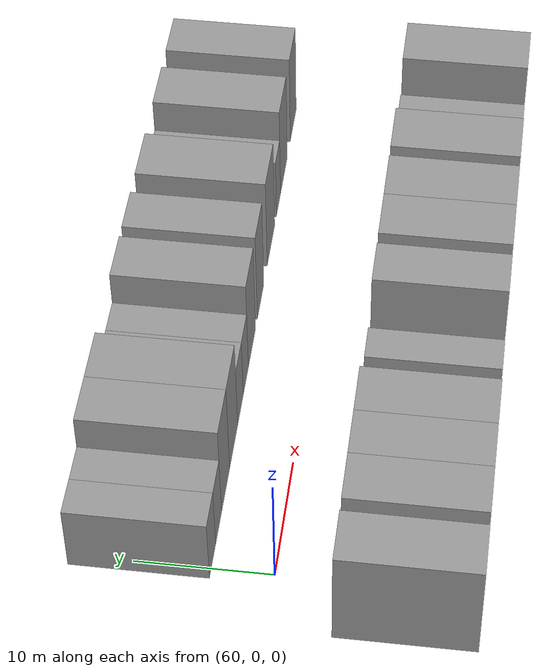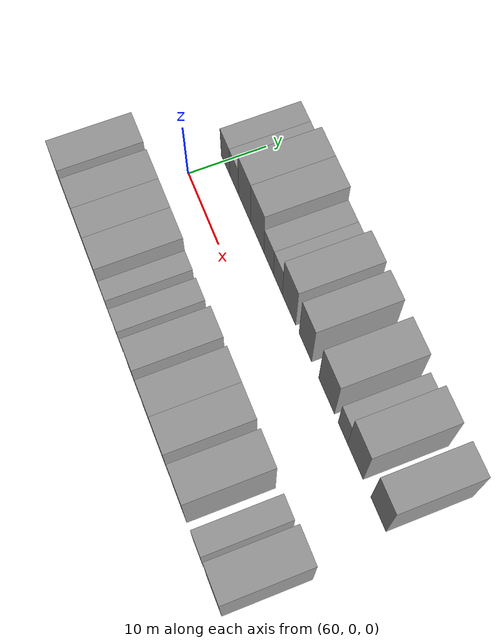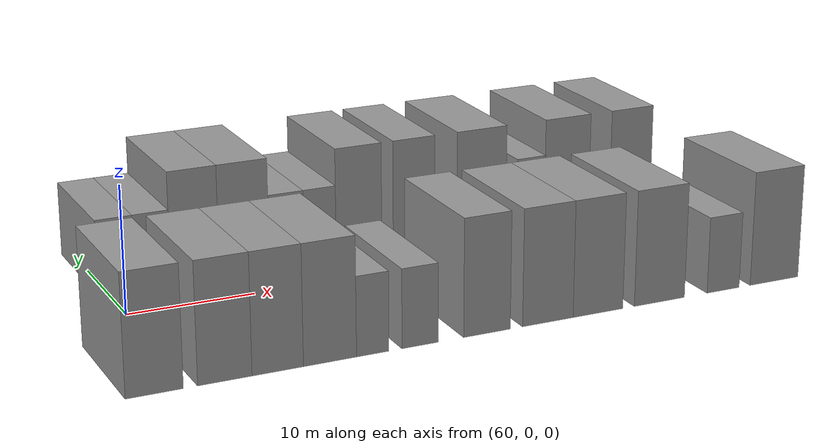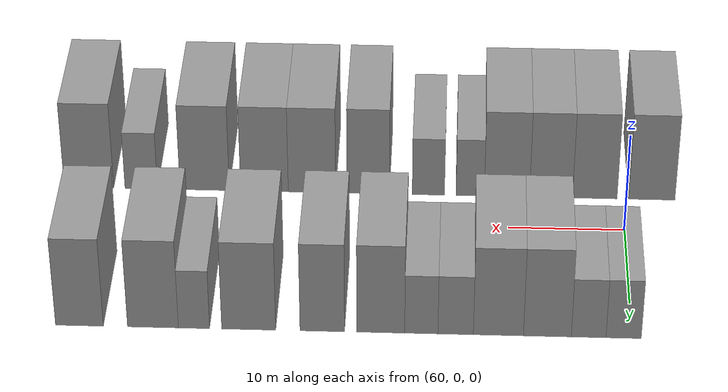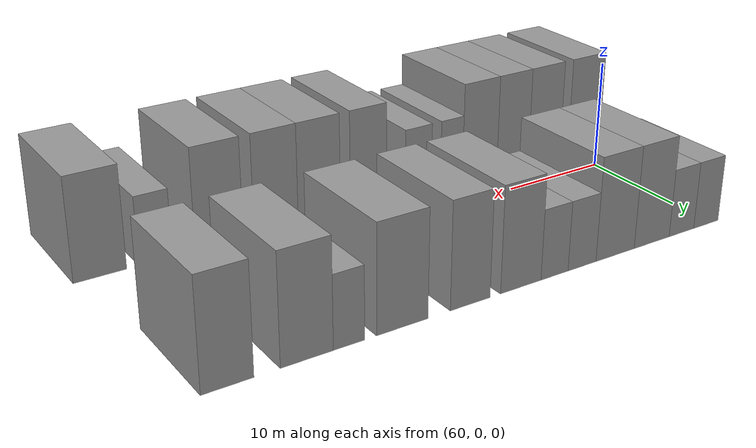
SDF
<sdf version="1.6">
 <world name="default">
  <model name="building_12">
   <static>1</static>
   <pose>60.6485 9.5000 0 0.000000 0.000000 1.570796</pose>
   <link name="link">
    <pose>0 0 3.00 0 0 0</pose>
    <collision name="collision"><geometry><box><size>10.0000 2.8870 6.0000</size></box></geometry></collision>
    <visual name="visual">
     <cast_shadows>0</cast_shadows>
     <geometry><box><size>10.0000 2.8870 6.0000</size></box></geometry>
     <material>
      <script>
       <uri>model://grey_wall/materials/scripts</uri>
       <uri>model://grey_wall/materials/textures</uri>
       <name>vrc/grey_wall</name>
      </script>
     </material>
    </visual>
   </link>
  </model>
  <model name="building_13">
   <static>1</static>
   <pose>63.5097 9.5000 0 0.000000 0.000000 1.570796</pose>
   <link name="link">
    <pose>0 0 3.00 0 0 0</pose>
    <collision name="collision"><geometry><box><size>10.0000 2.8355 6.0000</size></box></geometry></collision>
    <visual name="visual">
     <cast_shadows>0</cast_shadows>
     <geometry><box><size>10.0000 2.8355 6.0000</size></box></geometry>
     <material>
      <script>
       <uri>model://grey_wall/materials/scripts</uri>
       <uri>model://grey_wall/materials/textures</uri>
       <name>vrc/grey_wall</name>
      </script>
     </material>
    </visual>
   </link>
  </model>
  <model name="building_14">
   <static>1</static>
   <pose>66.8850 9.5000 0 0.000000 0.000000 1.570796</pose>
   <link name="link">
    <pose>0 0 4.50 0 0 0</pose>
    <collision name="collision"><geometry><box><size>10.0000 3.9152 9.0000</size></box></geometry></collision>
    <visual name="visual">
     <cast_shadows>0</cast_shadows>
     <geometry><box><size>10.0000 3.9152 9.0000</size></box></geometry>
     <material>
      <script>
       <uri>model://grey_wall/materials/scripts</uri>
       <uri>model://grey_wall/materials/textures</uri>
       <name>vrc/grey_wall</name>
      </script>
     </material>
    </visual>
   </link>
  </model>
  <model name="building_15">
   <static>1</static>
   <pose>70.8978 9.5000 0 0.000000 0.000000 1.570796</pose>
   <link name="link">
    <pose>0 0 4.50 0 0 0</pose>
    <collision name="collision"><geometry><box><size>10.0000 4.1103 9.0000</size></box></geometry></collision>
    <visual name="visual">
     <cast_shadows>0</cast_shadows>
     <geometry><box><size>10.0000 4.1103 9.0000</size></box></geometry>
     <material>
      <script>
       <uri>model://grey_wall/materials/scripts</uri>
       <uri>model://grey_wall/materials/textures</uri>
       <name>vrc/grey_wall</name>
      </script>
     </material>
    </visual>
   </link>
  </model>
  <model name="building_16">
   <static>1</static>
   <pose>74.4042 9.5000 0 0.000000 0.000000 1.570796</pose>
   <link name="link">
    <pose>0 0 3.00 0 0 0</pose>
    <collision name="collision"><geometry><box><size>10.0000 2.9024 6.0000</size></box></geometry></collision>
    <visual name="visual">
     <cast_shadows>0</cast_shadows>
     <geometry><box><size>10.0000 2.9024 6.0000</size></box></geometry>
     <material>
      <script>
       <uri>model://grey_wall/materials/scripts</uri>
       <uri>model://grey_wall/materials/textures</uri>
       <name>vrc/grey_wall</name>
      </script>
     </material>
    </visual>
   </link>
  </model>
  <model name="building_17">
   <static>1</static>
   <pose>77.2181 9.5000 0 0.000000 0.000000 1.570796</pose>
   <link name="link">
    <pose>0 0 3.00 0 0 0</pose>
    <collision name="collision"><geometry><box><size>10.0000 2.7256 6.0000</size></box></geometry></collision>
    <visual name="visual">
     <cast_shadows>0</cast_shadows>
     <geometry><box><size>10.0000 2.7256 6.0000</size></box></geometry>
     <material>
      <script>
       <uri>model://grey_wall/materials/scripts</uri>
       <uri>model://grey_wall/materials/textures</uri>
       <name>vrc/grey_wall</name>
      </script>
     </material>
    </visual>
   </link>
  </model>
  <model name="building_18">
   <static>1</static>
   <pose>80.5503 9.5000 0 0.000000 0.000000 1.570796</pose>
   <link name="link">
    <pose>0 0 4.50 0 0 0</pose>
    <collision name="collision"><geometry><box><size>10.0000 3.9388 9.0000</size></box></geometry></collision>
    <visual name="visual">
     <cast_shadows>0</cast_shadows>
     <geometry><box><size>10.0000 3.9388 9.0000</size></box></geometry>
     <material>
      <script>
       <uri>model://grey_wall/materials/scripts</uri>
       <uri>model://grey_wall/materials/textures</uri>
       <name>vrc/grey_wall</name>
      </script>
     </material>
    </visual>
   </link>
  </model>
  <model name="building_19">
   <static>1</static>
   <pose>85.3523 9.5000 0 0.000000 0.000000 1.570796</pose>
   <link name="link">
    <pose>0 0 4.50 0 0 0</pose>
    <collision name="collision"><geometry><box><size>10.0000 3.6652 9.0000</size></box></geometry></collision>
    <visual name="visual">
     <cast_shadows>0</cast_shadows>
     <geometry><box><size>10.0000 3.6652 9.0000</size></box></geometry>
     <material>
      <script>
       <uri>model://grey_wall/materials/scripts</uri>
       <uri>model://grey_wall/materials/textures</uri>
       <name>vrc/grey_wall</name>
      </script>
     </material>
    </visual>
   </link>
  </model>
  <model name="building_20">
   <static>1</static>
   <pose>91.4094 9.5000 0 0.000000 0.000000 1.570796</pose>
   <link name="link">
    <pose>0 0 4.50 0 0 0</pose>
    <collision name="collision"><geometry><box><size>10.0000 4.4489 9.0000</size></box></geometry></collision>
    <visual name="visual">
     <cast_shadows>0</cast_shadows>
     <geometry><box><size>10.0000 4.4489 9.0000</size></box></geometry>
     <material>
      <script>
       <uri>model://grey_wall/materials/scripts</uri>
       <uri>model://grey_wall/materials/textures</uri>
       <name>vrc/grey_wall</name>
      </script>
     </material>
    </visual>
   </link>
  </model>
  <model name="building_21">
   <static>1</static>
   <pose>95.9213 9.5000 0 0.000000 0.000000 1.570796</pose>
   <link name="link">
    <pose>0 0 3.00 0 0 0</pose>
    <collision name="collision"><geometry><box><size>10.0000 2.5750 6.0000</size></box></geometry></collision>
    <visual name="visual">
     <cast_shadows>0</cast_shadows>
     <geometry><box><size>10.0000 2.5750 6.0000</size></box></geometry>
     <material>
      <script>
       <uri>model://grey_wall/materials/scripts</uri>
       <uri>model://grey_wall/materials/textures</uri>
       <name>vrc/grey_wall</name>
      </script>
     </material>
    </visual>
   </link>
  </model>
  <model name="building_22">
   <static>1</static>
   <pose>99.3051 9.5000 0 0.000000 0.000000 1.570796</pose>
   <link name="link">
    <pose>0 0 4.50 0 0 0</pose>
    <collision name="collision"><geometry><box><size>10.0000 4.1926 9.0000</size></box></geometry></collision>
    <visual name="visual">
     <cast_shadows>0</cast_shadows>
     <geometry><box><size>10.0000 4.1926 9.0000</size></box></geometry>
     <material>
      <script>
       <uri>model://grey_wall/materials/scripts</uri>
       <uri>model://grey_wall/materials/textures</uri>
       <name>vrc/grey_wall</name>
      </script>
     </material>
    </visual>
   </link>
  </model>
  <model name="building_23">
   <static>1</static>
   <pose>105.3759 9.5000 0 0.000000 0.000000 1.570796</pose>
   <link name="link">
    <pose>0 0 4.50 0 0 0</pose>
    <collision name="collision"><geometry><box><size>10.0000 3.9490 9.0000</size></box></geometry></collision>
    <visual name="visual">
     <cast_shadows>0</cast_shadows>
     <geometry><box><size>10.0000 3.9490 9.0000</size></box></geometry>
     <material>
      <script>
       <uri>model://grey_wall/materials/scripts</uri>
       <uri>model://grey_wall/materials/textures</uri>
       <name>vrc/grey_wall</name>
      </script>
     </material>
    </visual>
   </link>
  </model>
  <model name="building_61">
   <static>1</static>
   <pose>57.4158 -9.5000 0 0.000000 0.000000 1.570796</pose>
   <link name="link">
    <pose>0 0 4.50 0 0 0</pose>
    <collision name="collision"><geometry><box><size>10.0000 4.0583 9.0000</size></box></geometry></collision>
    <visual name="visual">
     <cast_shadows>0</cast_shadows>
     <geometry><box><size>10.0000 4.0583 9.0000</size></box></geometry>
     <material>
      <script>
       <uri>model://grey_wall/materials/scripts</uri>
       <uri>model://grey_wall/materials/textures</uri>
       <name>vrc/grey_wall</name>
      </script>
     </material>
    </visual>
   </link>
  </model>
  <model name="building_62">
   <static>1</static>
   <pose>62.3943 -9.5000 0 0.000000 0.000000 1.570796</pose>
   <link name="link">
    <pose>0 0 4.50 0 0 0</pose>
    <collision name="collision"><geometry><box><size>10.0000 3.8988 9.0000</size></box></geometry></collision>
    <visual name="visual">
     <cast_shadows>0</cast_shadows>
     <geometry><box><size>10.0000 3.8988 9.0000</size></box></geometry>
     <material>
      <script>
       <uri>model://grey_wall/materials/scripts</uri>
       <uri>model://grey_wall/materials/textures</uri>
       <name>vrc/grey_wall</name>
      </script>
     </material>
    </visual>
   </link>
  </model>
  <model name="building_63">
   <static>1</static>
   <pose>66.2269 -9.5000 0 0.000000 0.000000 1.570796</pose>
   <link name="link">
    <pose>0 0 4.50 0 0 0</pose>
    <collision name="collision"><geometry><box><size>10.0000 3.7665 9.0000</size></box></geometry></collision>
    <visual name="visual">
     <cast_shadows>0</cast_shadows>
     <geometry><box><size>10.0000 3.7665 9.0000</size></box></geometry>
     <material>
      <script>
       <uri>model://grey_wall/materials/scripts</uri>
       <uri>model://grey_wall/materials/textures</uri>
       <name>vrc/grey_wall</name>
      </script>
     </material>
    </visual>
   </link>
  </model>
  <model name="building_64">
   <static>1</static>
   <pose>70.0989 -9.5000 0 0.000000 0.000000 1.570796</pose>
   <link name="link">
    <pose>0 0 4.50 0 0 0</pose>
    <collision name="collision"><geometry><box><size>10.0000 3.9775 9.0000</size></box></geometry></collision>
    <visual name="visual">
     <cast_shadows>0</cast_shadows>
     <geometry><box><size>10.0000 3.9775 9.0000</size></box></geometry>
     <material>
      <script>
       <uri>model://grey_wall/materials/scripts</uri>
       <uri>model://grey_wall/materials/textures</uri>
       <name>vrc/grey_wall</name>
      </script>
     </material>
    </visual>
   </link>
  </model>
  <model name="building_65">
   <static>1</static>
   <pose>73.3258 -9.5000 0 0.000000 0.000000 1.570796</pose>
   <link name="link">
    <pose>0 0 3.00 0 0 0</pose>
    <collision name="collision"><geometry><box><size>10.0000 2.4763 6.0000</size></box></geometry></collision>
    <visual name="visual">
     <cast_shadows>0</cast_shadows>
     <geometry><box><size>10.0000 2.4763 6.0000</size></box></geometry>
     <material>
      <script>
       <uri>model://grey_wall/materials/scripts</uri>
       <uri>model://grey_wall/materials/textures</uri>
       <name>vrc/grey_wall</name>
      </script>
     </material>
    </visual>
   </link>
  </model>
  <model name="building_66">
   <static>1</static>
   <pose>76.9820 -9.5000 0 0.000000 0.000000 1.570796</pose>
   <link name="link">
    <pose>0 0 3.00 0 0 0</pose>
    <collision name="collision"><geometry><box><size>10.0000 2.8361 6.0000</size></box></geometry></collision>
    <visual name="visual">
     <cast_shadows>0</cast_shadows>
     <geometry><box><size>10.0000 2.8361 6.0000</size></box></geometry>
     <material>
      <script>
       <uri>model://grey_wall/materials/scripts</uri>
       <uri>model://grey_wall/materials/textures</uri>
       <name>vrc/grey_wall</name>
      </script>
     </material>
    </visual>
   </link>
  </model>
  <model name="building_67">
   <static>1</static>
   <pose>82.2697 -9.5000 0 0.000000 0.000000 1.570796</pose>
   <link name="link">
    <pose>0 0 4.50 0 0 0</pose>
    <collision name="collision"><geometry><box><size>10.0000 3.7393 9.0000</size></box></geometry></collision>
    <visual name="visual">
     <cast_shadows>0</cast_shadows>
     <geometry><box><size>10.0000 3.7393 9.0000</size></box></geometry>
     <material>
      <script>
       <uri>model://grey_wall/materials/scripts</uri>
       <uri>model://grey_wall/materials/textures</uri>
       <name>vrc/grey_wall</name>
      </script>
     </material>
    </visual>
   </link>
  </model>
  <model name="building_68">
   <static>1</static>
   <pose>87.2250 -9.5000 0 0.000000 0.000000 1.570796</pose>
   <link name="link">
    <pose>0 0 4.50 0 0 0</pose>
    <collision name="collision"><geometry><box><size>10.0000 4.1713 9.0000</size></box></geometry></collision>
    <visual name="visual">
     <cast_shadows>0</cast_shadows>
     <geometry><box><size>10.0000 4.1713 9.0000</size></box></geometry>
     <material>
      <script>
       <uri>model://grey_wall/materials/scripts</uri>
       <uri>model://grey_wall/materials/textures</uri>
       <name>vrc/grey_wall</name>
      </script>
     </material>
    </visual>
   </link>
  </model>
  <model name="building_69">
   <static>1</static>
   <pose>91.4062 -9.5000 0 0.000000 0.000000 1.570796</pose>
   <link name="link">
    <pose>0 0 4.50 0 0 0</pose>
    <collision name="collision"><geometry><box><size>10.0000 4.1911 9.0000</size></box></geometry></collision>
    <visual name="visual">
     <cast_shadows>0</cast_shadows>
     <geometry><box><size>10.0000 4.1911 9.0000</size></box></geometry>
     <material>
      <script>
       <uri>model://grey_wall/materials/scripts</uri>
       <uri>model://grey_wall/materials/textures</uri>
       <name>vrc/grey_wall</name>
      </script>
     </material>
    </visual>
   </link>
  </model>
  <model name="building_70">
   <static>1</static>
   <pose>96.6743 -9.5000 0 0.000000 0.000000 1.570796</pose>
   <link name="link">
    <pose>0 0 4.50 0 0 0</pose>
    <collision name="collision"><geometry><box><size>10.0000 4.3452 9.0000</size></box></geometry></collision>
    <visual name="visual">
     <cast_shadows>0</cast_shadows>
     <geometry><box><size>10.0000 4.3452 9.0000</size></box></geometry>
     <material>
      <script>
       <uri>model://grey_wall/materials/scripts</uri>
       <uri>model://grey_wall/materials/textures</uri>
       <name>vrc/grey_wall</name>
      </script>
     </material>
    </visual>
   </link>
  </model>
  <model name="building_71">
   <static>1</static>
   <pose>102.2789 -9.5000 0 0.000000 0.000000 1.570796</pose>
   <link name="link">
    <pose>0 0 3.00 0 0 0</pose>
    <collision name="collision"><geometry><box><size>10.0000 2.8639 6.0000</size></box></geometry></collision>
    <visual name="visual">
     <cast_shadows>0</cast_shadows>
     <geometry><box><size>10.0000 2.8639 6.0000</size></box></geometry>
     <material>
      <script>
       <uri>model://grey_wall/materials/scripts</uri>
       <uri>model://grey_wall/materials/textures</uri>
       <name>vrc/grey_wall</name>
      </script>
     </material>
    </visual>
   </link>
  </model>
  <model name="building_72">
   <static>1</static>
   <pose>106.8956 -9.5000 0 0.000000 0.000000 1.570796</pose>
   <link name="link">
    <pose>0 0 4.50 0 0 0</pose>
    <collision name="collision"><geometry><box><size>10.0000 4.3695 9.0000</size></box></geometry></collision>
    <visual name="visual">
     <cast_shadows>0</cast_shadows>
     <geometry><box><size>10.0000 4.3695 9.0000</size></box></geometry>
     <material>
      <script>
       <uri>model://grey_wall/materials/scripts</uri>
       <uri>model://grey_wall/materials/textures</uri>
       <name>vrc/grey_wall</name>
      </script>
     </material>
    </visual>
   </link>
  </model>
 </world>
</sdf>
